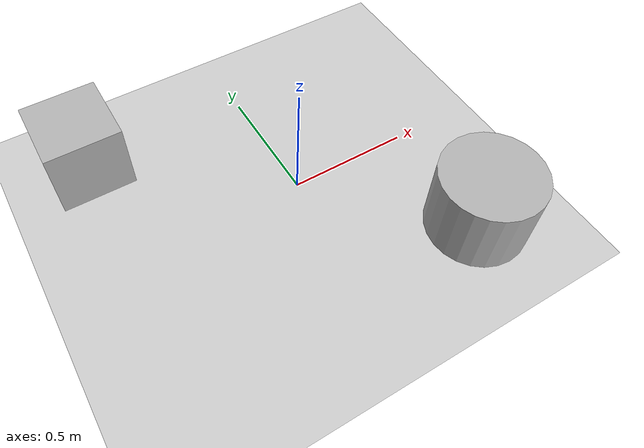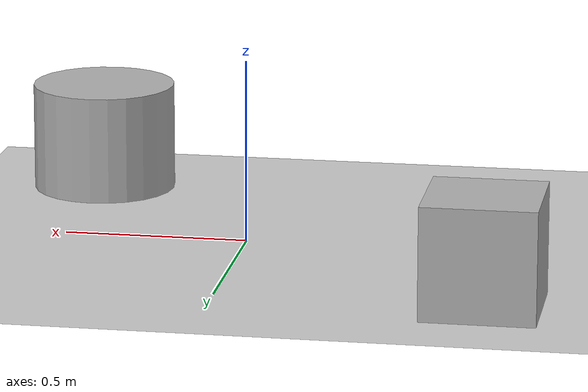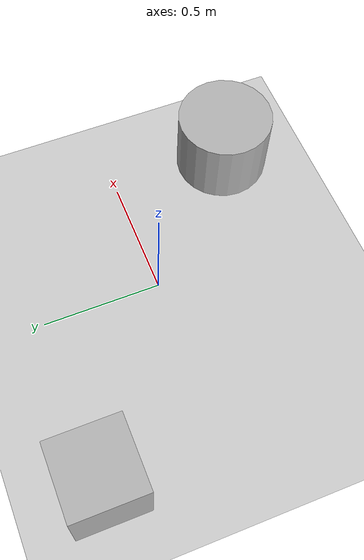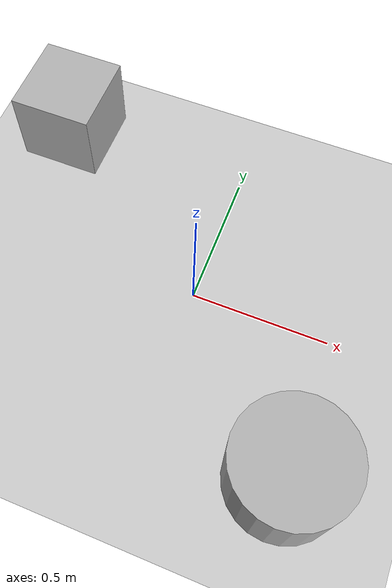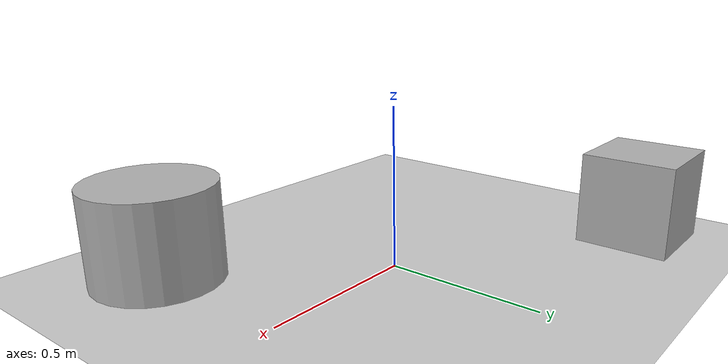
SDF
<sdf version='1.10'>
  <world name='empty'>
    <physics name='1ms' type='ignored'>
      <max_step_size>0.001</max_step_size>
      <real_time_factor>1</real_time_factor>
      <real_time_update_rate>1000</real_time_update_rate>
    </physics>
    <plugin name='gz::sim::systems::Physics' filename='gz-sim-physics-system'/>
    <plugin name='gz::sim::systems::UserCommands' filename='gz-sim-user-commands-system'/>
    <plugin name='gz::sim::systems::SceneBroadcaster' filename='gz-sim-scene-broadcaster-system'/>
    <gravity>0 0 -9.8000000000000007</gravity>
    <magnetic_field>5.5644999999999998e-06 2.2875799999999999e-05 -4.2388400000000002e-05</magnetic_field>
    <atmosphere type='adiabatic'/>
    <scene>
      <ambient>0.400000006 0.400000006 0.400000006 1</ambient>
      <background>0.699999988 0.699999988 0.699999988 1</background>
      <shadows>true</shadows>
    </scene>
    <model name='ground_plane'>
      <static>true</static>
      <link name='link'>
        <collision name='collision'>
          <geometry>
            <plane>
              <normal>0 0 1</normal>
              <size>100 100</size>
            </plane>
          </geometry>
          <surface>
            <friction>
              <ode/>
            </friction>
            <bounce/>
            <contact/>
          </surface>
        </collision>
        <visual name='visual'>
          <geometry>
            <plane>
              <normal>0 0 1</normal>
              <size>100 100</size>
            </plane>
          </geometry>
          <material>
            <ambient>0.800000012 0.800000012 0.800000012 1</ambient>
            <diffuse>0.800000012 0.800000012 0.800000012 1</diffuse>
            <specular>0.800000012 0.800000012 0.800000012 1</specular>
          </material>
        </visual>
        <pose>0 0 0 0 0 0</pose>
        <inertial>
          <pose>0 0 0 0 0 0</pose>
          <mass>1</mass>
          <inertia>
            <ixx>1</ixx>
            <ixy>0</ixy>
            <ixz>0</ixz>
            <iyy>1</iyy>
            <iyz>0</iyz>
            <izz>1</izz>
          </inertia>
        </inertial>
        <enable_wind>false</enable_wind>
      </link>
      <pose>0 0 0 0 0 0</pose>
      <self_collide>false</self_collide>
    </model>
    <model name='cylinder'>
      <pose>0.5 -0.5 0.15 0 0 0</pose>
      <link name='cylinder_link'>
        <inertial>
          <inertia>
            <ixx>0.145</ixx>
            <ixy>0</ixy>
            <ixz>0</ixz>
            <iyy>0.145</iyy>
            <iyz>0</iyz>
            <izz>0.125</izz>
          </inertia>
          <mass>1</mass>
          <pose>0 0 0 0 0 0</pose>
        </inertial>
        <collision name='cylinder_collision'>
          <geometry>
            <cylinder>
              <radius>0.2</radius>
              <length>0.3</length>
            </cylinder>
          </geometry>
          <surface>
            <friction>
              <ode/>
            </friction>
            <bounce/>
            <contact/>
          </surface>
        </collision>
        <visual name='cylinder_visual'>
          <geometry>
            <cylinder>
              <radius>0.2</radius>
              <length>0.3</length>
            </cylinder>
          </geometry>
          <material>
            <ambient>0.300000012 0.300000012 0.300000012 1</ambient>
            <diffuse>0.699999988 0.699999988 0.699999988 1</diffuse>
            <specular>1 1 1 1</specular>
          </material>
        </visual>
        <pose>0 0 0 0 0 0</pose>
        <enable_wind>false</enable_wind>
      </link>
      <static>false</static>
      <self_collide>false</self_collide>
    </model>
    <model name='box'>
      <pose>-0.7 0.5 0.15 0 0 0</pose>
      <link name='box_link'>
        <inertial>
          <inertia>
            <ixx>0.16666</ixx>
            <ixy>0</ixy>
            <ixz>0</ixz>
            <iyy>0.16666</iyy>
            <iyz>0</iyz>
            <izz>0.16666</izz>
          </inertia>
          <mass>1</mass>
          <pose>0 0 0 0 0 0</pose>
        </inertial>
        <collision name='box_collision'>
          <geometry>
            <box>
              <size>0.3 0.3 0.3</size>
            </box>
          </geometry>
          <surface>
            <friction>
              <ode/>
            </friction>
            <bounce/>
            <contact/>
          </surface>
        </collision>
        <visual name='box_visual'>
          <geometry>
            <box>
              <size>0.3 0.3 0.3</size>
            </box>
          </geometry>
          <material>
            <ambient>0.300000012 0.300000012 0.300000012 1</ambient>
            <diffuse>0.699999988 0.699999988 0.699999988 1</diffuse>
            <specular>1 1 1 1</specular>
          </material>
        </visual>
        <pose>0 0 0 0 0 0</pose>
        <enable_wind>false</enable_wind>
      </link>
      <static>false</static>
      <self_collide>false</self_collide>
    </model>
    <light name='sun' type='directional'>
      <pose>0 0 10 0 0 0</pose>
      <cast_shadows>true</cast_shadows>
      <intensity>1</intensity>
      <direction>-0.5 0.10000000000000001 -0.90000000000000002</direction>
      <diffuse>0.800000012 0.800000012 0.800000012 1</diffuse>
      <specular>0.200000003 0.200000003 0.200000003 1</specular>
      <attenuation>
        <range>1000</range>
        <linear>0.01</linear>
        <constant>0.90000000000000002</constant>
        <quadratic>0.001</quadratic>
      </attenuation>
      <spot>
        <inner_angle>0</inner_angle>
        <outer_angle>0</outer_angle>
        <falloff>0</falloff>
      </spot>
    </light>
    <gui fullscreen="0">
      <!-- 3D scene -->
      <plugin filename="MinimalScene" name="3D View">
        <gz-gui>
          <title>3D View</title>
          <property type="bool" key="showTitleBar">false</property>
          <property type="string" key="state">docked</property>
        </gz-gui>
        <engine>ogre2</engine>
        <scene>scene</scene>
        <ambient_light>0.4 0.4 0.4</ambient_light>
        <background_color>0.8 0.8 0.8</background_color>
        <camera_pose>-0.5 0 0.5 0 0.5 0</camera_pose>
      </plugin>
      <!-- Plugins that add functionality to the scene -->
      <plugin filename="EntityContextMenuPlugin" name="Entity context menu">
        <gz-gui>
          <property key="state" type="string">floating</property>
          <property key="width" type="double">5</property>
          <property key="height" type="double">5</property>
          <property key="showTitleBar" type="bool">false</property>
        </gz-gui>
      </plugin>
      <plugin filename="GzSceneManager" name="Scene Manager">
        <gz-gui>
          <property key="resizable" type="bool">false</property>
          <property key="width" type="double">5</property>
          <property key="height" type="double">5</property>
          <property key="state" type="string">floating</property>
          <property key="showTitleBar" type="bool">false</property>
        </gz-gui>
      </plugin>
      <plugin filename="InteractiveViewControl" name="Interactive view control">
        <gz-gui>
          <property key="resizable" type="bool">false</property>
          <property key="width" type="double">5</property>
          <property key="height" type="double">5</property>
          <property key="state" type="string">floating</property>
          <property key="showTitleBar" type="bool">false</property>
        </gz-gui>
      </plugin>
      <plugin filename="CameraTracking" name="Camera Tracking">
        <gz-gui>
          <property key="resizable" type="bool">false</property>
          <property key="width" type="double">5</property>
          <property key="height" type="double">5</property>
          <property key="state" type="string">floating</property>
          <property key="showTitleBar" type="bool">false</property>
        </gz-gui>
      </plugin>
      <!-- World control -->
      <plugin filename="WorldControl" name="World control">
        <gz-gui>
          <title>World control</title>
          <property type="bool" key="showTitleBar">false</property>
          <property type="bool" key="resizable">false</property>
          <property type="double" key="height">72</property>
          <property type="double" key="z">1</property>
          <property type="string" key="state">floating</property>
          <anchors target="3D View">
            <line own="left" target="left"/>
            <line own="bottom" target="bottom"/>
          </anchors>
        </gz-gui>
        <play_pause>true</play_pause>
        <step>true</step>
        <start_paused>true</start_paused>
        <use_event>true</use_event>
      </plugin>
      <plugin filename="MarkerManager" name="Marker manager">
        <gz-gui>
          <property key="resizable" type="bool">false</property>
          <property key="width" type="double">5</property>
          <property key="height" type="double">5</property>
          <property key="state" type="string">floating</property>
          <property key="showTitleBar" type="bool">false</property>
        </gz-gui>
      </plugin>
    </gui>
  </world>
</sdf>
